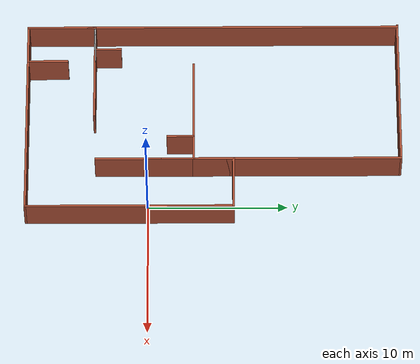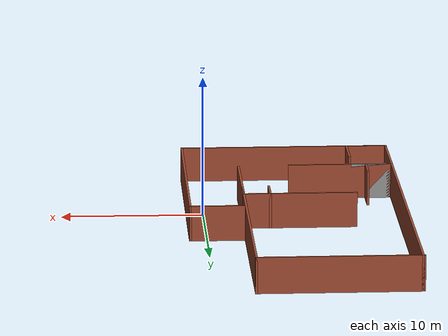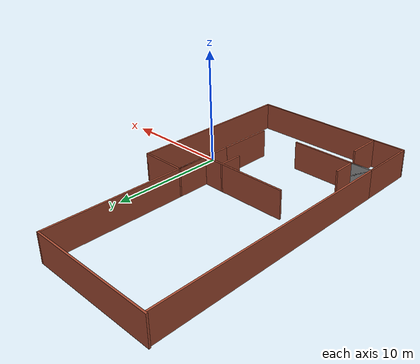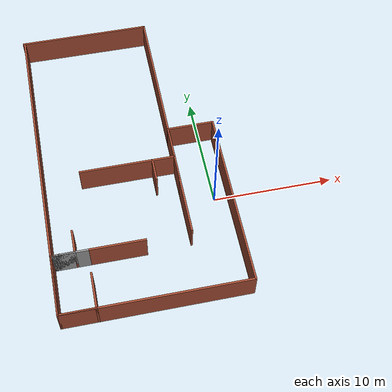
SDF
<?xml version='1.0'?>
<sdf version='1.7'>
  <model name='Kobuki_maze_smallv2'>
    <pose>-6.32166 4.72063 0 0 -0 0</pose>
    <link name='Wall_15'>
      <collision name='Wall_15_Collision'>
        <geometry>
          <box>
            <size>15 0.15 2.5</size>
          </box>
        </geometry>
        <pose>0 0 1.25 0 -0 0</pose>
      </collision>
      <visual name='Wall_15_Visual'>
        <pose>0 0 1.25 0 -0 0</pose>
        <geometry>
          <box>
            <size>15 0.15 2.5</size>
          </box>
        </geometry>
        <material>
          <script>
            <uri>file://media/materials/scripts/gazebo.material</uri>
            <name>Gazebo/Bricks</name>
          </script>
          <ambient>1 1 1 1</ambient>
        </material>
        <meta>
          <layer>0</layer>
        </meta>
      </visual>
      <pose>7.475 -6 0 0 -0 -1.5708</pose>
    </link>
    <link name='Wall_17'>
      <collision name='Wall_17_Collision'>
        <geometry>
          <box>
            <size>15 0.15 2.5</size>
          </box>
        </geometry>
        <pose>0 0 1.25 0 -0 0</pose>
      </collision>
      <visual name='Wall_17_Visual'>
        <pose>0 0 1.25 0 -0 0</pose>
        <geometry>
          <box>
            <size>15 0.15 2.5</size>
          </box>
        </geometry>
        <material>
          <script>
            <uri>file://media/materials/scripts/gazebo.material</uri>
            <name>Gazebo/Bricks</name>
          </script>
          <ambient>1 1 1 1</ambient>
        </material>
        <meta>
          <layer>0</layer>
        </meta>
      </visual>
      <pose>0.049999 -13.425 0 0 -0 3.14159</pose>
    </link>
    <link name='Wall_23'>
      <collision name='Wall_23_Collision'>
        <geometry>
          <box>
            <size>5.25 0.15 2.5</size>
          </box>
        </geometry>
        <pose>0 0 1.25 0 -0 0</pose>
      </collision>
      <visual name='Wall_23_Visual'>
        <pose>0 0 1.25 0 -0 0</pose>
        <geometry>
          <box>
            <size>5.25 0.15 2.5</size>
          </box>
        </geometry>
        <material>
          <script>
            <uri>file://media/materials/scripts/gazebo.material</uri>
            <name>Gazebo/Bricks</name>
          </script>
          <ambient>1 1 1 1</ambient>
        </material>
        <meta>
          <layer>0</layer>
        </meta>
      </visual>
      <pose>3.625 -1.125 0 0 -0 -1.5708</pose>
    </link>
    <link name='Wall_25'>
      <collision name='Wall_25_Collision'>
        <geometry>
          <box>
            <size>10 0.15 2.5</size>
          </box>
        </geometry>
        <pose>0 0 1.25 0 -0 0</pose>
      </collision>
      <visual name='Wall_25_Visual'>
        <pose>0 0 1.25 0 -0 0</pose>
        <geometry>
          <box>
            <size>10 0.15 2.5</size>
          </box>
        </geometry>
        <material>
          <script>
            <uri>file://media/materials/scripts/gazebo.material</uri>
            <name>Gazebo/Bricks</name>
          </script>
          <ambient>1 1 1 1</ambient>
        </material>
        <meta>
          <layer>0</layer>
        </meta>
      </visual>
      <pose>3.625 -3.5 0 0 -0 -1.5708</pose>
    </link>
    <link name='Wall_27'>
      <collision name='Wall_27_Collision'>
        <geometry>
          <box>
            <size>5 0.15 2.5</size>
          </box>
        </geometry>
        <pose>0 0 1.25 0 -0 0</pose>
      </collision>
      <visual name='Wall_27_Visual'>
        <pose>0 0 1.25 0 -0 0</pose>
        <geometry>
          <box>
            <size>5 0.15 2.5</size>
          </box>
        </geometry>
        <material>
          <script>
            <uri>file://media/materials/scripts/gazebo.material</uri>
            <name>Gazebo/Bricks</name>
          </script>
          <ambient>1 1 1 1</ambient>
        </material>
        <meta>
          <layer>0</layer>
        </meta>
      </visual>
      <pose>-7.375 -11 0 0 -0 1.5708</pose>
    </link>
    <link name='Wall_28'>
      <collision name='Wall_28_Collision'>
        <geometry>
          <box>
            <size>7.5 0.15 2.5</size>
          </box>
        </geometry>
        <pose>0 0 1.25 0 -0 0</pose>
      </collision>
      <visual name='Wall_28_Visual'>
        <pose>0 0 1.25 0 -0 0</pose>
        <geometry>
          <box>
            <size>7.5 0.15 2.5</size>
          </box>
        </geometry>
        <material>
          <script>
            <uri>file://media/materials/scripts/gazebo.material</uri>
            <name>Gazebo/Bricks</name>
          </script>
          <ambient>1 1 1 1</ambient>
        </material>
        <meta>
          <layer>0</layer>
        </meta>
      </visual>
      <pose>-3.7 -8.575 0 0 -0 0</pose>
    </link>
    <link name='Wall_30'>
      <collision name='Wall_30_Collision'>
        <geometry>
          <box>
            <size>3 0.15 2.5</size>
          </box>
        </geometry>
        <pose>0 0 1.25 0 -0 0</pose>
      </collision>
      <visual name='Wall_30_Visual'>
        <pose>0 0 1.25 0 -0 0</pose>
        <geometry>
          <box>
            <size>3 0.15 2.5</size>
          </box>
        </geometry>
        <material>
          <script>
            <uri>file://media/materials/scripts/gazebo.material</uri>
            <name>Gazebo/Bricks</name>
          </script>
          <ambient>1 1 1 1</ambient>
        </material>
        <meta>
          <layer>0</layer>
        </meta>
      </visual>
      <pose>-5.95 -13.425 0 0 -0 0</pose>
    </link>
    <link name='Wall_31'>
      <collision name='Wall_31_Collision'>
        <geometry>
          <box>
            <size>3 0.15 2.5</size>
          </box>
        </geometry>
        <pose>0 0 1.25 0 -0 0</pose>
      </collision>
      <visual name='Wall_31_Visual'>
        <pose>0 0 1.25 0 -0 0</pose>
        <geometry>
          <box>
            <size>3 0.15 2.5</size>
          </box>
        </geometry>
        <material>
          <script>
            <uri>file://media/materials/scripts/gazebo.material</uri>
            <name>Gazebo/Bricks</name>
          </script>
          <ambient>1 1 1 1</ambient>
        </material>
        <meta>
          <layer>0</layer>
        </meta>
      </visual>
      <pose>-4.525 -12 0 0 -0 1.5708</pose>
    </link>
    <link name='Wall_34'>
      <collision name='Wall_34_Collision'>
        <geometry>
          <box>
            <size>8 0.15 2.5</size>
          </box>
        </geometry>
        <pose>0 0 1.25 0 -0 0</pose>
      </collision>
      <visual name='Wall_34_Visual'>
        <pose>0 0 1.25 0 -0 0</pose>
        <geometry>
          <box>
            <size>8 0.15 2.5</size>
          </box>
        </geometry>
        <material>
          <script>
            <uri>file://media/materials/scripts/gazebo.material</uri>
            <name>Gazebo/Bricks</name>
          </script>
          <ambient>1 1 1 1</ambient>
        </material>
        <meta>
          <layer>0</layer>
        </meta>
      </visual>
      <pose>-0.300001 -1.425 0 0 -0 3.14159</pose>
    </link>
    <link name='Wall_36'>
      <collision name='Wall_36_Collision'>
        <geometry>
          <box>
            <size>3 0.15 2.5</size>
          </box>
        </geometry>
        <pose>0 0 1.25 0 -0 0</pose>
      </collision>
      <visual name='Wall_36_Visual'>
        <pose>0 0 1.25 0 -0 0</pose>
        <geometry>
          <box>
            <size>3 0.15 2.5</size>
          </box>
        </geometry>
        <material>
          <script>
            <uri>file://media/materials/scripts/gazebo.material</uri>
            <name>Gazebo/Grey</name>
          </script>
          <ambient>1 1 1 1</ambient>
        </material>
        <meta>
          <layer>0</layer>
        </meta>
      </visual>
      <pose>-5.95 -8.575 0 0 -0 0</pose>
    </link>
    <link name='Wall_38'>
      <collision name='Wall_38_Collision'>
        <geometry>
          <box>
            <size>2 0.15 2.5</size>
          </box>
        </geometry>
        <pose>0 0 1.25 0 -0 0</pose>
      </collision>
      <visual name='Wall_38_Visual'>
        <pose>0 0 1.25 0 -0 0</pose>
        <geometry>
          <box>
            <size>2 0.15 2.5</size>
          </box>
        </geometry>
        <material>
          <script>
            <uri>file://media/materials/scripts/gazebo.material</uri>
            <name>Gazebo/Grey</name>
          </script>
          <ambient>1 1 1 1</ambient>
        </material>
        <meta>
          <layer>0</layer>
        </meta>
      </visual>
      <pose>-6.45 -8.575 0 0 -0 0</pose>
    </link>
    <link name='Wall_39'>
      <collision name='Wall_39_Collision'>
        <geometry>
          <box>
            <size>2 0.15 2.5</size>
          </box>
        </geometry>
        <pose>0 0 1.25 0 -0 0</pose>
      </collision>
      <visual name='Wall_39_Visual'>
        <pose>0 0 1.25 0 -0 0</pose>
        <geometry>
          <box>
            <size>2 0.15 2.5</size>
          </box>
        </geometry>
        <material>
          <script>
            <uri>file://media/materials/scripts/gazebo.material</uri>
            <name>Gazebo/Bricks</name>
          </script>
          <ambient>1 1 1 1</ambient>
        </material>
        <meta>
          <layer>0</layer>
        </meta>
      </visual>
      <pose>-5.525 -7.65 0 0 -0 1.5708</pose>
    </link>
    <link name='Wall_42'>
      <collision name='Wall_42_Collision'>
        <geometry>
          <box>
            <size>2 0.15 2.5</size>
          </box>
        </geometry>
        <pose>0 0 1.25 0 -0 0</pose>
      </collision>
      <visual name='Wall_42_Visual'>
        <pose>0 0 1.25 0 -0 0</pose>
        <geometry>
          <box>
            <size>2 0.15 2.5</size>
          </box>
        </geometry>
        <material>
          <script>
            <uri>file://media/materials/scripts/gazebo.material</uri>
            <name>Gazebo/Bricks</name>
          </script>
          <ambient>1 1 1 1</ambient>
        </material>
        <meta>
          <layer>0</layer>
        </meta>
      </visual>
      <pose>1.775 -2.35 0 0 -0 -1.5708</pose>
    </link>
    <link name='Wall_57'>
      <collision name='Wall_57_Collision'>
        <geometry>
          <box>
            <size>4 0.15 2.5</size>
          </box>
        </geometry>
        <pose>0 0 1.25 0 -0 0</pose>
      </collision>
      <visual name='Wall_57_Visual'>
        <pose>0 0 1.25 0 -0 0</pose>
        <geometry>
          <box>
            <size>4 0.15 2.5</size>
          </box>
        </geometry>
        <material>
          <script>
            <uri>file://media/materials/scripts/gazebo.material</uri>
            <name>Gazebo/Bricks</name>
          </script>
          <ambient>1 1 1 1</ambient>
        </material>
        <meta>
          <layer>0</layer>
        </meta>
      </visual>
      <pose>5.55 1.425 0 0 -0 0</pose>
    </link>
    <link name='Wall_59'>
      <collision name='Wall_59_Collision'>
        <geometry>
          <box>
            <size>15 0.15 2.5</size>
          </box>
        </geometry>
        <pose>0 0 1.25 0 -0 0</pose>
      </collision>
      <visual name='Wall_59_Visual'>
        <pose>0 0 1.25 0 -0 0</pose>
        <geometry>
          <box>
            <size>15 0.15 2.5</size>
          </box>
        </geometry>
        <material>
          <script>
            <uri>file://media/materials/scripts/gazebo.material</uri>
            <name>Gazebo/Bricks</name>
          </script>
          <ambient>1 1 1 1</ambient>
        </material>
        <meta>
          <layer>0</layer>
        </meta>
      </visual>
      <pose>3.625 6 0 0 -0 1.5708</pose>
    </link>
    <link name='Wall_61'>
      <collision name='Wall_61_Collision'>
        <geometry>
          <box>
            <size>11.25 0.15 2.5</size>
          </box>
        </geometry>
        <pose>0 0 1.25 0 -0 0</pose>
      </collision>
      <visual name='Wall_61_Visual'>
        <pose>0 0 1.25 0 -0 0</pose>
        <geometry>
          <box>
            <size>11.25 0.15 2.5</size>
          </box>
        </geometry>
        <material>
          <script>
            <uri>file://media/materials/scripts/gazebo.material</uri>
            <name>Gazebo/Bricks</name>
          </script>
          <ambient>1 1 1 1</ambient>
        </material>
        <meta>
          <layer>0</layer>
        </meta>
      </visual>
      <pose>-1.925 13.425 0 0 -0 3.14159</pose>
    </link>
    <link name='Wall_64'>
      <collision name='Wall_64_Collision'>
        <geometry>
          <box>
            <size>27 0.15 2.5</size>
          </box>
        </geometry>
        <pose>0 0 1.25 0 -0 0</pose>
      </collision>
      <visual name='Wall_64_Visual'>
        <pose>0 0 1.25 0 -0 0</pose>
        <geometry>
          <box>
            <size>27 0.15 2.5</size>
          </box>
        </geometry>
        <material>
          <script>
            <uri>file://media/materials/scripts/gazebo.material</uri>
            <name>Gazebo/Bricks</name>
          </script>
          <ambient>1 1 1 1</ambient>
        </material>
        <meta>
          <layer>0</layer>
        </meta>
      </visual>
      <pose>-7.375 0 0 0 -0 1.5708</pose>
    </link>
    <static>1</static>
  </model>
</sdf>
